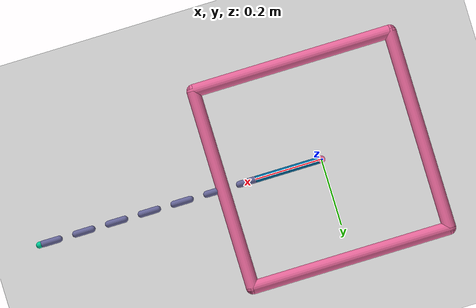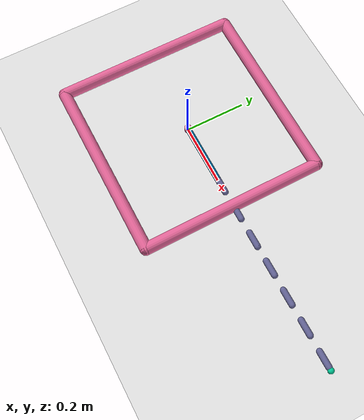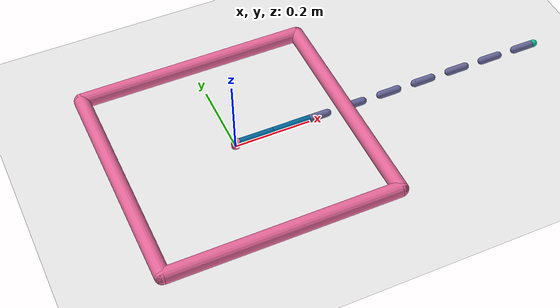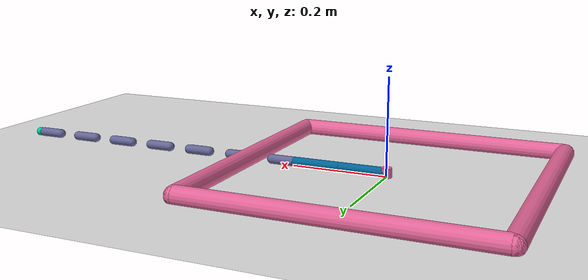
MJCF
<mujoco model="reacher">
    <compiler angle="radian" inertiafromgeom="true"/>
    <default>
        <joint armature="1" damping="1" limited="true"/>
        <geom contype="0" friction="1 0.1 0.1" rgba="0.7 0.7 0 1"/>
    </default>
    <option gravity="0 0 -9.81" integrator="RK4" timestep="0.01"/>
    <worldbody>
        <!-- Arena -->
        <geom conaffinity="0" contype="0" name="ground" pos="0 0 0" rgba="0.9 0.9 0.9 1" size="1 1 10" type="plane"/>
        <geom conaffinity="0" fromto="-.3 -.3 .01 .3 -.3 .01" name="sideS" rgba="0.9 0.4 0.6 1" size=".02"
              type="capsule"/>
        <geom conaffinity="0" fromto=" .3 -.3 .01 .3  .3 .01" name="sideE" rgba="0.9 0.4 0.6 1" size=".02"
              type="capsule"/>
        <geom conaffinity="0" fromto="-.3  .3 .01 .3  .3 .01" name="sideN" rgba="0.9 0.4 0.6 1" size=".02"
              type="capsule"/>
        <geom conaffinity="0" fromto="-.3 -.3 .01 -.3 .3 .01" name="sideW" rgba="0.9 0.4 0.6 1" size=".02"
              type="capsule"/>
        <!-- Arm -->
        <geom conaffinity="0" contype="0" fromto="0 0 0 0 0 0.02" name="root" rgba="0.9 0.4 0.6 1" size=".011"
              type="cylinder"/>
        <body name="body0" pos="0 0 .01">
            <geom fromto="0 0 0 0.1 0 0" name="link0" rgba="0.0 0.4 0.6 1" size=".01" type="capsule"/>
            <joint axis="0 0 1" limited="false" name="joint0" pos="0 0 0" type="hinge"/>
            <body name="body1" pos="0.1 0 0">
                <joint axis="0 0 1" limited="true" name="joint1" pos="0 0 0" range="-3.0 3.0" type="hinge"/>
                <geom fromto="0 0 0 0.1 0 0" name="link1" rgba="0.0 0.4 0.6 1" size=".01" type="capsule"/>
                <body name="body2" pos="0.1 0 0">
                    <joint axis="0 0 1" limited="true" name="joint2" pos="0 0 0" range="-3.0 3.0" type="hinge"/>
                    <geom fromto="0 0 0 0.05 0 0" name="link2" rgba="0.4 0.4 0.6 1" size=".01" type="capsule"/>
                    <body name="body3" pos="0.1 0 0">
                        <joint axis="0 0 1" limited="true" name="joint3" pos="0 0 0" range="-3.0 3.0" type="hinge"/>
                        <geom fromto="0 0 0 0.05 0 0" name="link3" rgba="0.4 0.4 0.6 1" size=".01" type="capsule"/>
                        <body name="body4" pos="0.1 0 0">
                            <joint axis="0 0 1" limited="true" name="joint4" pos="0 0 0" range="-3.0 3.0" type="hinge"/>
                            <geom fromto="0 0 0 0.05 0 0" name="link4" rgba="0.4 0.4 0.6 1" size=".01" type="capsule"/>
                            <body name="body5" pos="0.1 0 0">
                                <joint axis="0 0 1" limited="true" name="joint5" pos="0 0 0" range="-3.0 3.0"
                                       type="hinge"/>
                                <geom fromto="0 0 0 0.05 0 0" name="link5" rgba="0.4 0.4 0.6 1" size=".01"
                                      type="capsule"/>
                                <body name="body6" pos="0.1 0 0">
                                    <joint axis="0 0 1" limited="true" name="joint6" pos="0 0 0" range="-3.0 3.0"
                                           type="hinge"/>
                                    <geom fromto="0 0 0 0.05 0 0" name="link62" rgba="0.4 0.4 0.6 1" size=".01"
                                          type="capsule"/>
                                    <body name="body7" pos="0.1 0 0">
                                        <joint axis="0 0 1" limited="true" name="joint7" pos="0 0 0" range="-3.0 3.0"
                                               type="hinge"/>
                                        <geom fromto="0 0 0 0.05 0 0" name="link7" rgba="0.4 0.4 0.6 1" size=".01"
                                              type="capsule"/>
                                        <body name="body8" pos="0.1 0 0">
                                            <joint axis="0 0 1" limited="true" name="joint8" pos="0 0 0"
                                                   range="-3.0 3.0" type="hinge"/>
                                            <geom fromto="0 0 0 0.05 0 0" name="link8" rgba="0.4 0.4 0.6 1" size=".01"
                                                  type="capsule"/>
                                            <body name="fingertip" pos="0.06 0 0">
                                                <geom contype="0" name="fingertip" pos="0 0 0" rgba="0.0 0.8 0.6 1"
                                                      size=".01" type="sphere"/>
                                            </body>

                                        </body>
                                    </body>
                                </body>
                            </body>
                        </body>
                    </body>
                </body>
            </body>
        </body>
        <!-- Target -->
        <body name="target" pos="0 0 .01">
            <joint armature="0" axis="1 0 0" damping="0" limited="true" name="target_x" pos="0 0 0" range="-.27 .27"
                   stiffness="0"
                   type="slide"/>
            <joint armature="0" axis="0 1 0" damping="0" limited="true" name="target_y" pos="0 0 0" range="-.27 .27"
                   stiffness="0"
                   type="slide"/>
            <geom conaffinity="0" contype="0" name="target" pos="0 0 0" rgba="0.9 0.2 0.2 1" size=".009" type="sphere"/>
        </body>
    </worldbody>
    <actuator>
        <motor ctrllimited="true" ctrlrange="-1.0 1.0" gear="200.0" joint="joint0"/>
        <motor ctrllimited="true" ctrlrange="-1.0 1.0" gear="200.0" joint="joint1"/>
        <motor ctrllimited="true" ctrlrange="-1.0 1.0" gear="200.0" joint="joint2"/>
        <motor ctrllimited="true" ctrlrange="-1.0 1.0" gear="200.0" joint="joint3"/>
        <motor ctrllimited="true" ctrlrange="-1.0 1.0" gear="200.0" joint="joint4"/>
        <motor ctrllimited="true" ctrlrange="-1.0 1.0" gear="200.0" joint="joint5"/>
        <motor ctrllimited="true" ctrlrange="-1.0 1.0" gear="200.0" joint="joint6"/>
        <motor ctrllimited="true" ctrlrange="-1.0 1.0" gear="200.0" joint="joint7"/>
        <motor ctrllimited="true" ctrlrange="-1.0 1.0" gear="200.0" joint="joint8"/>

    </actuator>
</mujoco>
